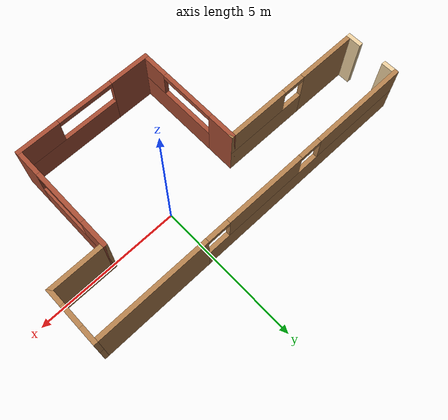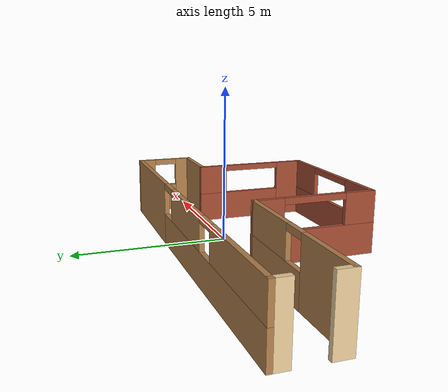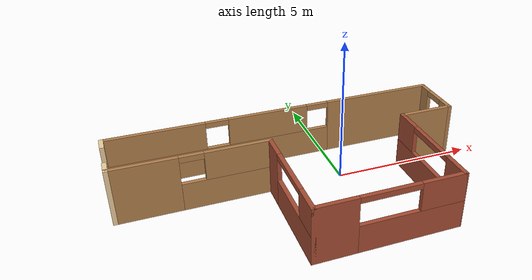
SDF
<?xml version='1.0'?>
<sdf version='1.6'>
  <model name='home'>
    <pose frame=''>-1.755 -0.984 0 0 -0 0</pose>
    <link name='Wall_10'>
      <pose frame=''>-5.925 1.925 0 0 -0 -1.5708</pose>
      <visual name='Wall_10_Visual_0'>
        <pose frame=''>-0.7245 0 1 0 -0 0</pose>
        <geometry>
          <box>
            <size>0.551 0.15 2</size>
          </box>
        </geometry>
        <material>
          <script>
            <uri>file://media/materials/scripts/gazebo.material</uri>
            <name>Gazebo/Grey</name>
          </script>
          <ambient>0.921569 0.807843 0.615686 1</ambient>
        </material>
        <meta>
          <layer>0</layer>
        </meta>
      </visual>
      <collision name='Wall_10_Collision_0'>
        <geometry>
          <box>
            <size>0.551 0.15 2</size>
          </box>
        </geometry>
        <pose frame=''>-0.7245 0 1 0 -0 0</pose>
      </collision>
      <visual name='Wall_10_Visual_1'>
        <pose frame=''>0.7255 0 1 0 -0 0</pose>
        <geometry>
          <box>
            <size>0.549 0.15 2</size>
          </box>
        </geometry>
        <material>
          <script>
            <uri>file://media/materials/scripts/gazebo.material</uri>
            <name>Gazebo/Grey</name>
          </script>
          <ambient>0.921569 0.807843 0.615686 1</ambient>
        </material>
        <meta>
          <layer>0</layer>
        </meta>
      </visual>
      <collision name='Wall_10_Collision_1'>
        <geometry>
          <box>
            <size>0.549 0.15 2</size>
          </box>
        </geometry>
        <pose frame=''>0.7255 0 1 0 -0 0</pose>
      </collision>
    </link>
    <link name='Wall_11'>
      <pose frame=''>-3.35 1 0 0 -0 0</pose>
      <visual name='Wall_11_Visual_0'>
        <pose frame=''>-1.5275 0 1 0 -0 0</pose>
        <geometry>
          <box>
            <size>2.245 0.15 2</size>
          </box>
        </geometry>
        <material>
          <script>
            <uri>file://media/materials/scripts/gazebo.material</uri>
            <name>Gazebo/Wood</name>
          </script>
          <ambient>1 1 1 1</ambient>
        </material>
        <meta>
          <layer>0</layer>
        </meta>
      </visual>
      <collision name='Wall_11_Collision_0'>
        <geometry>
          <box>
            <size>2.245 0.15 2</size>
          </box>
        </geometry>
        <pose frame=''>-1.5275 0 1 0 -0 0</pose>
      </collision>
      <visual name='Wall_11_Visual_1'>
        <pose frame=''>1.1225 0 0.5 0 -0 0</pose>
        <geometry>
          <box>
            <size>3.055 0.15 1</size>
          </box>
        </geometry>
        <material>
          <script>
            <uri>file://media/materials/scripts/gazebo.material</uri>
            <name>Gazebo/Wood</name>
          </script>
          <ambient>1 1 1 1</ambient>
        </material>
        <meta>
          <layer>0</layer>
        </meta>
      </visual>
      <collision name='Wall_11_Collision_1'>
        <geometry>
          <box>
            <size>3.055 0.15 1</size>
          </box>
        </geometry>
        <pose frame=''>1.1225 0 0.5 0 -0 0</pose>
      </collision>
      <visual name='Wall_11_Visual_2'>
        <pose frame=''>1.5225 0 1.5 0 -0 0</pose>
        <geometry>
          <box>
            <size>2.255 0.15 1</size>
          </box>
        </geometry>
        <material>
          <script>
            <uri>file://media/materials/scripts/gazebo.material</uri>
            <name>Gazebo/Wood</name>
          </script>
          <ambient>1 1 1 1</ambient>
        </material>
        <meta>
          <layer>0</layer>
        </meta>
      </visual>
      <collision name='Wall_11_Collision_2'>
        <geometry>
          <box>
            <size>2.255 0.15 1</size>
          </box>
        </geometry>
        <pose frame=''>1.5225 0 1.5 0 -0 0</pose>
      </collision>
      <visual name='Wall_11_Visual_3'>
        <pose frame=''>-0.005 0 1.9 0 -0 0</pose>
        <geometry>
          <box>
            <size>0.8 0.15 0.2</size>
          </box>
        </geometry>
        <material>
          <script>
            <uri>file://media/materials/scripts/gazebo.material</uri>
            <name>Gazebo/Wood</name>
          </script>
          <ambient>1 1 1 1</ambient>
        </material>
        <meta>
          <layer>0</layer>
        </meta>
      </visual>
      <collision name='Wall_11_Collision_3'>
        <geometry>
          <box>
            <size>0.8 0.15 0.2</size>
          </box>
        </geometry>
        <pose frame=''>-0.005 0 1.9 0 -0 0</pose>
      </collision>
    </link>
    <link name='Wall_4'>
      <pose frame=''>-0.775 -0.925 0 0 -0 -1.5708</pose>
      <visual name='Wall_4_Visual_0'>
        <pose frame=''>-1.5045 0 1 0 -0 0</pose>
        <geometry>
          <box>
            <size>0.991 0.15 2</size>
          </box>
        </geometry>
        <material>
          <script>
            <uri>file://media/materials/scripts/gazebo.material</uri>
            <name>Gazebo/Bricks</name>
          </script>
          <ambient>1 1 1 1</ambient>
        </material>
        <meta>
          <layer>0</layer>
        </meta>
      </visual>
      <collision name='Wall_4_Collision_0'>
        <geometry>
          <box>
            <size>0.991 0.15 2</size>
          </box>
        </geometry>
        <pose frame=''>-1.5045 0 1 0 -0 0</pose>
      </collision>
      <visual name='Wall_4_Visual_1'>
        <pose frame=''>0.4955 0 0.5 0 -0 0</pose>
        <geometry>
          <box>
            <size>3.009 0.15 1</size>
          </box>
        </geometry>
        <material>
          <script>
            <uri>file://media/materials/scripts/gazebo.material</uri>
            <name>Gazebo/Bricks</name>
          </script>
          <ambient>1 1 1 1</ambient>
        </material>
        <meta>
          <layer>0</layer>
        </meta>
      </visual>
      <collision name='Wall_4_Collision_1'>
        <geometry>
          <box>
            <size>3.009 0.15 1</size>
          </box>
        </geometry>
        <pose frame=''>0.4955 0 0.5 0 -0 0</pose>
      </collision>
      <visual name='Wall_4_Visual_2'>
        <pose frame=''>1.4955 0 1.5 0 -0 0</pose>
        <geometry>
          <box>
            <size>1.009 0.15 1</size>
          </box>
        </geometry>
        <material>
          <script>
            <uri>file://media/materials/scripts/gazebo.material</uri>
            <name>Gazebo/Bricks</name>
          </script>
          <ambient>1 1 1 1</ambient>
        </material>
        <meta>
          <layer>0</layer>
        </meta>
      </visual>
      <collision name='Wall_4_Collision_2'>
        <geometry>
          <box>
            <size>1.009 0.15 1</size>
          </box>
        </geometry>
        <pose frame=''>1.4955 0 1.5 0 -0 0</pose>
      </collision>
      <visual name='Wall_4_Visual_3'>
        <pose frame=''>-0.009 0 1.9 0 -0 0</pose>
        <geometry>
          <box>
            <size>2 0.15 0.2</size>
          </box>
        </geometry>
        <material>
          <script>
            <uri>file://media/materials/scripts/gazebo.material</uri>
            <name>Gazebo/Bricks</name>
          </script>
          <ambient>1 1 1 1</ambient>
        </material>
        <meta>
          <layer>0</layer>
        </meta>
      </visual>
      <collision name='Wall_4_Collision_3'>
        <geometry>
          <box>
            <size>2 0.15 0.2</size>
          </box>
        </geometry>
        <pose frame=''>-0.009 0 1.9 0 -0 0</pose>
      </collision>
    </link>
    <link name='Wall_5'>
      <pose frame=''>1.65 -2.85 0 0 -0 0</pose>
      <visual name='Wall_5_Visual_0'>
        <pose frame=''>-1.7625 0 1 0 -0 0</pose>
        <geometry>
          <box>
            <size>1.475 0.15 2</size>
          </box>
        </geometry>
        <material>
          <script>
            <uri>file://media/materials/scripts/gazebo.material</uri>
            <name>Gazebo/Bricks</name>
          </script>
          <ambient>1 1 1 1</ambient>
        </material>
        <meta>
          <layer>0</layer>
        </meta>
      </visual>
      <collision name='Wall_5_Collision_0'>
        <geometry>
          <box>
            <size>1.475 0.15 2</size>
          </box>
        </geometry>
        <pose frame=''>-1.7625 0 1 0 -0 0</pose>
      </collision>
      <visual name='Wall_5_Visual_1'>
        <pose frame=''>0.7375 0 0.5 0 -0 0</pose>
        <geometry>
          <box>
            <size>3.525 0.15 1</size>
          </box>
        </geometry>
        <material>
          <script>
            <uri>file://media/materials/scripts/gazebo.material</uri>
            <name>Gazebo/Bricks</name>
          </script>
          <ambient>1 1 1 1</ambient>
        </material>
        <meta>
          <layer>0</layer>
        </meta>
      </visual>
      <collision name='Wall_5_Collision_1'>
        <geometry>
          <box>
            <size>3.525 0.15 1</size>
          </box>
        </geometry>
        <pose frame=''>0.7375 0 0.5 0 -0 0</pose>
      </collision>
      <visual name='Wall_5_Visual_2'>
        <pose frame=''>1.7375 0 1.5 0 -0 0</pose>
        <geometry>
          <box>
            <size>1.525 0.15 1</size>
          </box>
        </geometry>
        <material>
          <script>
            <uri>file://media/materials/scripts/gazebo.material</uri>
            <name>Gazebo/Bricks</name>
          </script>
          <ambient>1 1 1 1</ambient>
        </material>
        <meta>
          <layer>0</layer>
        </meta>
      </visual>
      <collision name='Wall_5_Collision_2'>
        <geometry>
          <box>
            <size>1.525 0.15 1</size>
          </box>
        </geometry>
        <pose frame=''>1.7375 0 1.5 0 -0 0</pose>
      </collision>
      <visual name='Wall_5_Visual_3'>
        <pose frame=''>-0.025 0 1.9 0 -0 0</pose>
        <geometry>
          <box>
            <size>2 0.15 0.2</size>
          </box>
        </geometry>
        <material>
          <script>
            <uri>file://media/materials/scripts/gazebo.material</uri>
            <name>Gazebo/Bricks</name>
          </script>
          <ambient>1 1 1 1</ambient>
        </material>
        <meta>
          <layer>0</layer>
        </meta>
      </visual>
      <collision name='Wall_5_Collision_3'>
        <geometry>
          <box>
            <size>2 0.15 0.2</size>
          </box>
        </geometry>
        <pose frame=''>-0.025 0 1.9 0 -0 0</pose>
      </collision>
    </link>
    <link name='Wall_6'>
      <pose frame=''>4.075 -0.925 0 0 -0 1.5708</pose>
      <visual name='Wall_6_Visual_0'>
        <pose frame=''>-1.4955 0 1 0 -0 0</pose>
        <geometry>
          <box>
            <size>1.009 0.15 2</size>
          </box>
        </geometry>
        <material>
          <script>
            <uri>file://media/materials/scripts/gazebo.material</uri>
            <name>Gazebo/Bricks</name>
          </script>
          <ambient>1 1 1 1</ambient>
        </material>
        <meta>
          <layer>0</layer>
        </meta>
      </visual>
      <collision name='Wall_6_Collision_0'>
        <geometry>
          <box>
            <size>1.009 0.15 2</size>
          </box>
        </geometry>
        <pose frame=''>-1.4955 0 1 0 -0 0</pose>
      </collision>
      <visual name='Wall_6_Visual_1'>
        <pose frame=''>0.5045 0 0.5 0 -0 0</pose>
        <geometry>
          <box>
            <size>2.991 0.15 1</size>
          </box>
        </geometry>
        <material>
          <script>
            <uri>file://media/materials/scripts/gazebo.material</uri>
            <name>Gazebo/Bricks</name>
          </script>
          <ambient>1 1 1 1</ambient>
        </material>
        <meta>
          <layer>0</layer>
        </meta>
      </visual>
      <collision name='Wall_6_Collision_1'>
        <geometry>
          <box>
            <size>2.991 0.15 1</size>
          </box>
        </geometry>
        <pose frame=''>0.5045 0 0.5 0 -0 0</pose>
      </collision>
      <visual name='Wall_6_Visual_2'>
        <pose frame=''>1.5045 0 1.5 0 -0 0</pose>
        <geometry>
          <box>
            <size>0.991 0.15 1</size>
          </box>
        </geometry>
        <material>
          <script>
            <uri>file://media/materials/scripts/gazebo.material</uri>
            <name>Gazebo/Bricks</name>
          </script>
          <ambient>1 1 1 1</ambient>
        </material>
        <meta>
          <layer>0</layer>
        </meta>
      </visual>
      <collision name='Wall_6_Collision_2'>
        <geometry>
          <box>
            <size>0.991 0.15 1</size>
          </box>
        </geometry>
        <pose frame=''>1.5045 0 1.5 0 -0 0</pose>
      </collision>
      <visual name='Wall_6_Visual_3'>
        <pose frame=''>0.009 0 1.9 0 -0 0</pose>
        <geometry>
          <box>
            <size>2 0.15 0.2</size>
          </box>
        </geometry>
        <material>
          <script>
            <uri>file://media/materials/scripts/gazebo.material</uri>
            <name>Gazebo/Bricks</name>
          </script>
          <ambient>1 1 1 1</ambient>
        </material>
        <meta>
          <layer>0</layer>
        </meta>
      </visual>
      <collision name='Wall_6_Collision_3'>
        <geometry>
          <box>
            <size>2 0.15 0.2</size>
          </box>
        </geometry>
        <pose frame=''>0.009 0 1.9 0 -0 0</pose>
      </collision>
    </link>
    <link name='Wall_7'>
      <collision name='Wall_7_Collision'>
        <geometry>
          <box>
            <size>2 0.15 2</size>
          </box>
        </geometry>
        <pose frame=''>0 0 1 0 -0 0</pose>
      </collision>
      <visual name='Wall_7_Visual'>
        <pose frame=''>0 0 1 0 -0 0</pose>
        <geometry>
          <box>
            <size>2 0.15 2</size>
          </box>
        </geometry>
        <material>
          <script>
            <uri>file://media/materials/scripts/gazebo.material</uri>
            <name>Gazebo/Wood</name>
          </script>
          <ambient>1 1 1 1</ambient>
        </material>
        <meta>
          <layer>0</layer>
        </meta>
      </visual>
      <pose frame=''>5 1 0 0 -0 0</pose>
    </link>
    <link name='Wall_8'>
      <pose frame=''>5.925 1.925 0 0 -0 1.5708</pose>
      <visual name='Wall_8_Visual_0'>
        <pose frame=''>-0.7005 0 1 0 -0 0</pose>
        <geometry>
          <box>
            <size>0.599 0.15 2</size>
          </box>
        </geometry>
        <material>
          <script>
            <uri>file://media/materials/scripts/gazebo.material</uri>
            <name>Gazebo/Wood</name>
          </script>
          <ambient>1 1 1 1</ambient>
        </material>
        <meta>
          <layer>0</layer>
        </meta>
      </visual>
      <collision name='Wall_8_Collision_0'>
        <geometry>
          <box>
            <size>0.599 0.15 2</size>
          </box>
        </geometry>
        <pose frame=''>-0.7005 0 1 0 -0 0</pose>
      </collision>
      <visual name='Wall_8_Visual_1'>
        <pose frame=''>0.2995 0 0.5 0 -0 0</pose>
        <geometry>
          <box>
            <size>1.401 0.15 1</size>
          </box>
        </geometry>
        <material>
          <script>
            <uri>file://media/materials/scripts/gazebo.material</uri>
            <name>Gazebo/Wood</name>
          </script>
          <ambient>1 1 1 1</ambient>
        </material>
        <meta>
          <layer>0</layer>
        </meta>
      </visual>
      <collision name='Wall_8_Collision_1'>
        <geometry>
          <box>
            <size>1.401 0.15 1</size>
          </box>
        </geometry>
        <pose frame=''>0.2995 0 0.5 0 -0 0</pose>
      </collision>
      <visual name='Wall_8_Visual_2'>
        <pose frame=''>0.6995 0 1.5 0 -0 0</pose>
        <geometry>
          <box>
            <size>0.601 0.15 1</size>
          </box>
        </geometry>
        <material>
          <script>
            <uri>file://media/materials/scripts/gazebo.material</uri>
            <name>Gazebo/Wood</name>
          </script>
          <ambient>1 1 1 1</ambient>
        </material>
        <meta>
          <layer>0</layer>
        </meta>
      </visual>
      <collision name='Wall_8_Collision_2'>
        <geometry>
          <box>
            <size>0.601 0.15 1</size>
          </box>
        </geometry>
        <pose frame=''>0.6995 0 1.5 0 -0 0</pose>
      </collision>
      <visual name='Wall_8_Visual_3'>
        <pose frame=''>-0.001 0 1.9 0 -0 0</pose>
        <geometry>
          <box>
            <size>0.8 0.15 0.2</size>
          </box>
        </geometry>
        <material>
          <script>
            <uri>file://media/materials/scripts/gazebo.material</uri>
            <name>Gazebo/Wood</name>
          </script>
          <ambient>1 1 1 1</ambient>
        </material>
        <meta>
          <layer>0</layer>
        </meta>
      </visual>
      <collision name='Wall_8_Collision_3'>
        <geometry>
          <box>
            <size>0.8 0.15 0.2</size>
          </box>
        </geometry>
        <pose frame=''>-0.001 0 1.9 0 -0 0</pose>
      </collision>
    </link>
    <link name='Wall_9'>
      <pose frame=''>-0 2.85 0 0 -0 3.14159</pose>
      <visual name='Wall_9_Visual_0'>
        <pose frame=''>-3.9825 0 1 0 -0 0</pose>
        <geometry>
          <box>
            <size>4.035 0.15 2</size>
          </box>
        </geometry>
        <material>
          <script>
            <uri>file://media/materials/scripts/gazebo.material</uri>
            <name>Gazebo/Wood</name>
          </script>
          <ambient>1 1 1 1</ambient>
        </material>
        <meta>
          <layer>0</layer>
        </meta>
      </visual>
      <collision name='Wall_9_Collision_0'>
        <geometry>
          <box>
            <size>4.035 0.15 2</size>
          </box>
        </geometry>
        <pose frame=''>-3.9825 0 1 0 -0 0</pose>
      </collision>
      <visual name='Wall_9_Visual_1'>
        <pose frame=''>2.0175 0 0.5 0 -0 0</pose>
        <geometry>
          <box>
            <size>7.965 0.15 1</size>
          </box>
        </geometry>
        <material>
          <script>
            <uri>file://media/materials/scripts/gazebo.material</uri>
            <name>Gazebo/Wood</name>
          </script>
          <ambient>1 1 1 1</ambient>
        </material>
        <meta>
          <layer>0</layer>
        </meta>
      </visual>
      <collision name='Wall_9_Collision_1'>
        <geometry>
          <box>
            <size>7.965 0.15 1</size>
          </box>
        </geometry>
        <pose frame=''>2.0175 0 0.5 0 -0 0</pose>
      </collision>
      <visual name='Wall_9_Visual_2'>
        <pose frame=''>0.275 0 1.5 0 -0 0</pose>
        <geometry>
          <box>
            <size>2.88 0.15 1</size>
          </box>
        </geometry>
        <material>
          <script>
            <uri>file://media/materials/scripts/gazebo.material</uri>
            <name>Gazebo/Wood</name>
          </script>
          <ambient>1 1 1 1</ambient>
        </material>
        <meta>
          <layer>0</layer>
        </meta>
      </visual>
      <collision name='Wall_9_Collision_2'>
        <geometry>
          <box>
            <size>2.88 0.15 1</size>
          </box>
        </geometry>
        <pose frame=''>0.275 0 1.5 0 -0 0</pose>
      </collision>
      <visual name='Wall_9_Visual_3'>
        <pose frame=''>4.2575 0 1.5 0 -0 0</pose>
        <geometry>
          <box>
            <size>3.485 0.15 1</size>
          </box>
        </geometry>
        <material>
          <script>
            <uri>file://media/materials/scripts/gazebo.material</uri>
            <name>Gazebo/Wood</name>
          </script>
          <ambient>1 1 1 1</ambient>
        </material>
        <meta>
          <layer>0</layer>
        </meta>
      </visual>
      <collision name='Wall_9_Collision_3'>
        <geometry>
          <box>
            <size>3.485 0.15 1</size>
          </box>
        </geometry>
        <pose frame=''>4.2575 0 1.5 0 -0 0</pose>
      </collision>
      <visual name='Wall_9_Visual_4'>
        <pose frame=''>-1.565 0 1.9 0 -0 0</pose>
        <geometry>
          <box>
            <size>0.8 0.15 0.2</size>
          </box>
        </geometry>
        <material>
          <script>
            <uri>file://media/materials/scripts/gazebo.material</uri>
            <name>Gazebo/Wood</name>
          </script>
          <ambient>1 1 1 1</ambient>
        </material>
        <meta>
          <layer>0</layer>
        </meta>
      </visual>
      <collision name='Wall_9_Collision_4'>
        <geometry>
          <box>
            <size>0.8 0.15 0.2</size>
          </box>
        </geometry>
        <pose frame=''>-1.565 0 1.9 0 -0 0</pose>
      </collision>
      <visual name='Wall_9_Visual_5'>
        <pose frame=''>2.115 0 1.9 0 -0 0</pose>
        <geometry>
          <box>
            <size>0.8 0.15 0.2</size>
          </box>
        </geometry>
        <material>
          <script>
            <uri>file://media/materials/scripts/gazebo.material</uri>
            <name>Gazebo/Wood</name>
          </script>
          <ambient>1 1 1 1</ambient>
        </material>
        <meta>
          <layer>0</layer>
        </meta>
      </visual>
      <collision name='Wall_9_Collision_5'>
        <geometry>
          <box>
            <size>0.8 0.15 0.2</size>
          </box>
        </geometry>
        <pose frame=''>2.115 0 1.9 0 -0 0</pose>
      </collision>
    </link>
    <static>1</static>
  </model>
</sdf>
